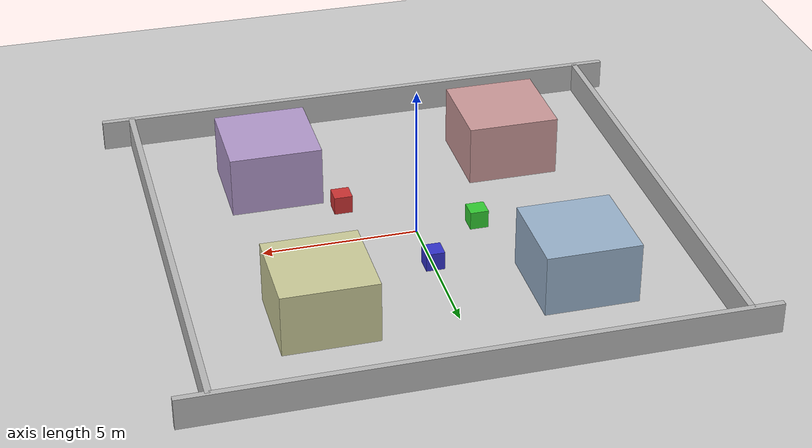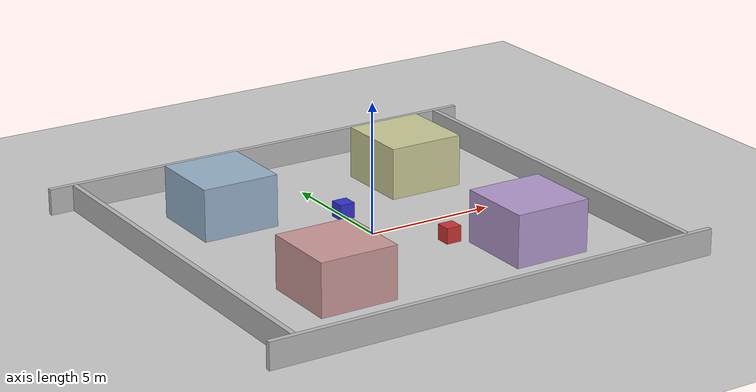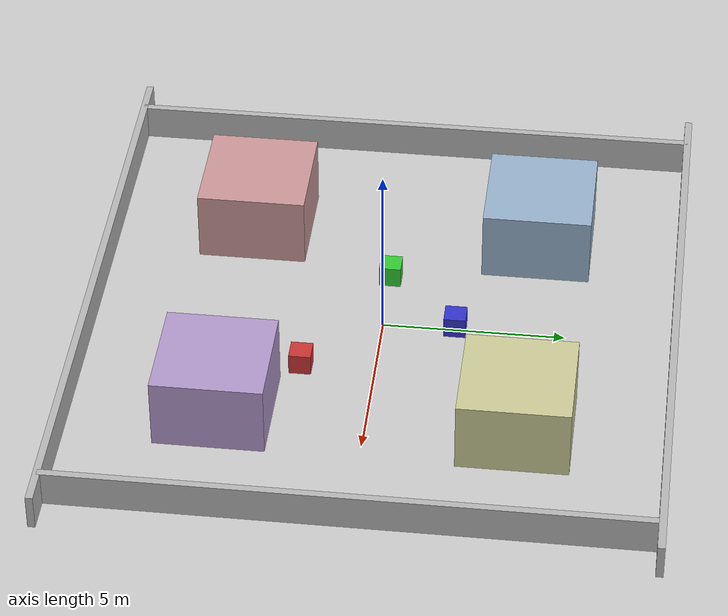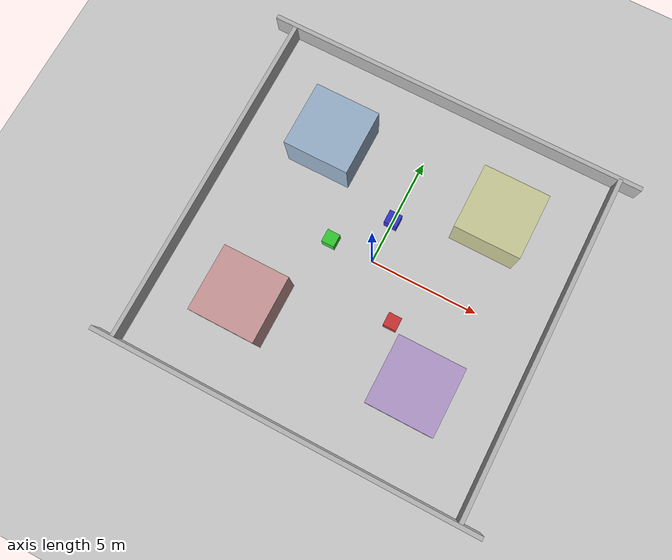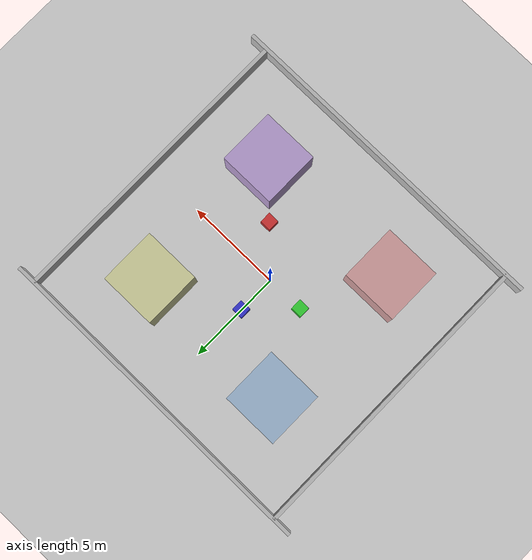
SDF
<?xml version="1.0" ?>
<sdf version="1.5">
  <world name="city_block">
    <include><uri>model://sun</uri></include>
    <include><uri>model://ground_plane</uri></include>

    <physics type="ode">
      <max_step_size>0.004</max_step_size>
      <real_time_update_rate>250</real_time_update_rate>
    </physics>

    <!-- 외벽 -->
    <model name="wall_north"><static>true</static><pose>0 8 0.5 0 0 0</pose>
      <link name="link"><collision name="c"><geometry><box><size>18 0.2 1</size></box></geometry></collision>
      <visual name="v"><geometry><box><size>18 0.2 1</size></box></geometry></visual></link></model>

    <model name="wall_south"><static>true</static><pose>0 -8 0.5 0 0 0</pose>
      <link name="link"><collision name="c"><geometry><box><size>18 0.2 1</size></box></geometry></collision>
      <visual name="v"><geometry><box><size>18 0.2 1</size></box></geometry></visual></link></model>

    <model name="wall_east"><static>true</static><pose>8 0 0.5 0 0 0</pose>
      <link name="link"><collision name="c"><geometry><box><size>0.2 16 1</size></box></geometry></collision>
      <visual name="v"><geometry><box><size>0.2 16 1</size></box></geometry></visual></link></model>

    <model name="wall_west"><static>true</static><pose>-8 0 0.5 0 0 0</pose>
      <link name="link"><collision name="c"><geometry><box><size>0.2 16 1</size></box></geometry></collision>
      <visual name="v"><geometry><box><size>0.2 16 1</size></box></geometry></visual></link></model>

    <!-- 건물 4개 (단순 박스) -->
    <model name="building_1"><static>true</static><pose>4 4 1 0 0 0</pose>
      <link name="link"><collision name="c"><geometry><box><size>3 3 2</size></box></geometry></collision>
      <visual name="v"><geometry><box><size>3 3 2</size></box></geometry>
      <material><ambient>0.8 0.8 0.6 1</ambient></material></visual></link></model>

    <model name="building_2"><static>true</static><pose>-4 4 1 0 0 0</pose>
      <link name="link"><collision name="c"><geometry><box><size>3 3 2</size></box></geometry></collision>
      <visual name="v"><geometry><box><size>3 3 2</size></box></geometry>
      <material><ambient>0.6 0.7 0.8 1</ambient></material></visual></link></model>

    <model name="building_3"><static>true</static><pose>4 -4 1 0 0 0</pose>
      <link name="link"><collision name="c"><geometry><box><size>3 3 2</size></box></geometry></collision>
      <visual name="v"><geometry><box><size>3 3 2</size></box></geometry>
      <material><ambient>0.7 0.6 0.8 1</ambient></material></visual></link></model>

    <model name="building_4"><static>true</static><pose>-4 -4 1 0 0 0</pose>
      <link name="link"><collision name="c"><geometry><box><size>3 3 2</size></box></geometry></collision>
      <visual name="v"><geometry><box><size>3 3 2</size></box></geometry>
      <material><ambient>0.8 0.6 0.6 1</ambient></material></visual></link></model>

    <!-- 장애물 3개 -->
    <model name="obs_1"><static>true</static><pose>0 2 0.3 0 0 0</pose>
      <link name="link"><collision name="c"><geometry><box><size>0.6 0.6 0.6</size></box></geometry></collision>
      <visual name="v"><geometry><box><size>0.6 0.6 0.6</size></box></geometry>
      <material><ambient>0.2 0.2 0.8 1</ambient></material></visual></link></model>

    <model name="obs_2"><static>true</static><pose>2 -2 0.3 0 0 0</pose>
      <link name="link"><collision name="c"><geometry><box><size>0.6 0.6 0.6</size></box></geometry></collision>
      <visual name="v"><geometry><box><size>0.6 0.6 0.6</size></box></geometry>
      <material><ambient>0.8 0.2 0.2 1</ambient></material></visual></link></model>

    <model name="obs_3"><static>true</static><pose>-2 0 0.3 0 0 0</pose>
      <link name="link"><collision name="c"><geometry><box><size>0.6 0.6 0.6</size></box></geometry></collision>
      <visual name="v"><geometry><box><size>0.6 0.6 0.6</size></box></geometry>
      <material><ambient>0.2 0.8 0.2 1</ambient></material></visual></link></model>

  </world>
</sdf>
